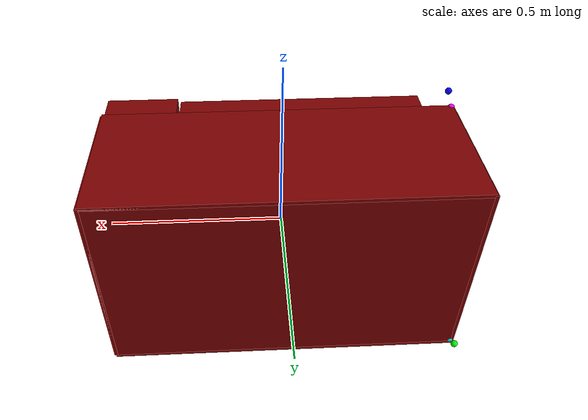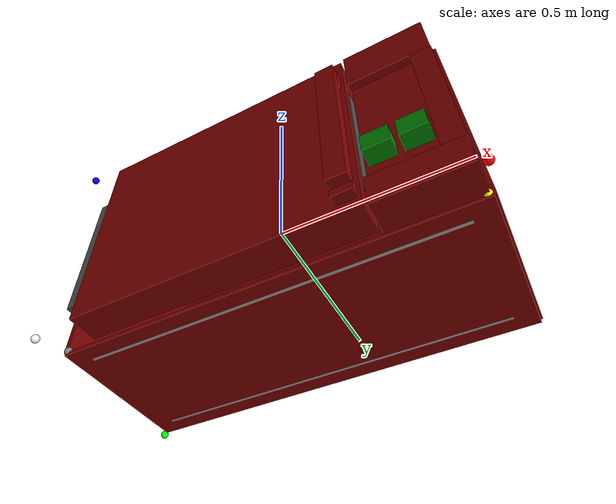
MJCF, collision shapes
<mujoco model="model">
  <compiler angle="radian"/>
  <asset>
    <texture file="visuals/material_0.png" name="tex-model" type="2d"/>
    <texture type="2d" name="image0" file="visuals/image0.png"/>
    <material name="model" reflectance="0.5" texrepeat="1 1" texture="tex-model" texuniform="false"/>
    <material name="Baked_Microwave" texture="image0" specular="0.5" shininess="0.25"/>
    <material name="Door_Inside" specular="0.5" shininess="0.25" rgba="0.3059 0.3059 0.3059 1"/>
    <mesh file="visuals/model_0.obj" name="model_0_vis" scale="1 1 1"/>
    <mesh file="visuals/door_0.obj" name="door_0_vis" scale="1 1 1"/>
  </asset>
  <default>
    <default class="visual">
      <geom conaffinity="0" contype="0" group="1" type="mesh"/>
    </default>
    <default class="collision">
      <geom group="0" rgba="0.5 0 0 0.5"/>
    </default>
  </default>
  <worldbody>
    <body>
      <body name="object">
        <geom solimp="0.998 0.998 0.001" solref="0.001 1" density="100" friction="0.95 0.3 0.1" type="mesh" mesh="model_0_vis" material="Baked_Microwave" class="visual"/>
        <!-- Back Wall -->
        <geom class="collision" type="box" pos="0 0.262 0.005" size="0.5 0.005 0.285"/>
        <!-- Floor -->
        <geom class="collision" type="box" pos="0 0.067 -0.283" size="0.5 0.2 0.005"/>
        <!-- Top -->
        <geom class="collision" type="box" pos="0 0.067 0.29" size="0.5 0.2 0.005"/>
        <!-- Left Wall-->
        <geom class="collision" type="box" pos="-0.5 0.067 0.005" size="0.005 0.2 0.285"/>
        <!-- Right Wall-->
        <geom class="collision" type="box" pos="0.5 0.067 0.005" size="0.005 0.2 0.285"/>
        <!-- Keypad -->
        <geom class="collision" type="box" pos="0.393 -0.174 0.225" size="0.101 0.041 0.065"/>
        <geom class="collision" type="box" pos="0.393 -0.174 -0.24" size="0.101 0.041 0.04"/>
        <geom class="collision" type="box" pos="0.47 -0.174 -0.02" size="0.025 0.041 0.18"/>
        <geom class="collision" type="box" pos="0.37 -0.174 -0.02" size="0.075 0.0215 0.18"/>
        <!-- start/stop buttons -->
        <body name="start_button" pos="0.41 -0.22 -0.13">
          <body name="start_button_body" pos="0 0 0">
              <joint name="start_button_joint" type="slide" pos="0 0 0" axis="0 1 0" range="0 0.02" limited="false" stiffness="2000" damping="50" springref="0.001"/>
              <geom name="start_button_geom" class="collision" type="box" pos="0 0 0" size="0.03 0.0216 0.025" rgba="0.0 0.5 0 0.5" mass="0.5"/>
          </body>
        </body>
        <body name="close_button" pos="0.335 -0.22 -0.13">
          <body name="close_button_body" pos="0 0 0">
              <joint name="close_button_joint" type="slide" pos="0 0 0" axis="0 1 0" range="0 0.02" limited="false" stiffness="2000" damping="50" springref="0.001"/>
              <geom name="close_button_geom" class="collision" type="box" pos="0 0 0" size="0.03 0.0216 0.025" rgba="0.0 0.5 0 0.5" mass="0.5"/>
          </body>
        </body>
        <geom class="collision" type="cylinder" pos="-0.09 0.07 -0.282" size="0.19 0.005" rgba="0 1 0 0.5" name="tray"/>
        <!-- Bottom gaps fixes -->
        <geom class="visual" type="box" pos="0 -0.095 -0.285" size="0.45 0.008 0.002" axisangle="1 0 0 -0.6"/>
        <geom class="visual" type="box" pos="0 0.227 -0.285" size="0.45 0.009 0.002" axisangle="1 0 0 0.6"/>
        <body name="door">
          <joint axis="0 0 1" limited="true" name="microjoint" range="-1.57 0" damping="2" frictionloss="2" armature=".01" pos="-0.471 -0.178 0"/>
          <geom solimp="0.998 0.998 0.001" solref="0.001 1" density="100" friction="0.95 0.3 0.1" type="mesh" mesh="door_0_vis" material="Baked_Microwave" class="visual"/>
          <!-- Door -->
          <geom class="collision" type="box" pos="-0.067 -0.174 0.005" size="0.351 0.041 0.275"/>
          <!-- Handle Top -->
          <geom class="collision" type="box" pos="0.254 -0.22 0.18" size="0.023 0.02 0.021"/>
          <!-- Handle Bottom -->
          <geom class="collision" type="box" pos="0.254 -0.22 -0.23" size="0.023 0.02 0.021"/>
          <!-- Handle Main -->
          <geom class="collision" type="box" pos="0.254 -0.248 -0.02" size="0.023 0.016 0.21" name="door_handle"/>
          <!-- Door inside gap fixes -->
          <geom class="visual" type="box" pos="0.2325 -0.165 -0.022" size="0.054 0.03 0.185" material="Door_Inside"/>
          <geom class="visual" type="box" pos="-0.435 -0.165 -0.022" size="0.03 0.03 0.185" material="Door_Inside"/>
          <geom class="visual" type="box" pos="-0.113 -0.165 -0.185" size="0.293 0.03 0.02" material="Door_Inside"/>
          <geom class="visual" type="box" pos="-0.113 -0.165 0.1125" size="0.293 0.03 0.047" material="Door_Inside"/>
          <!-- door sites -->
          <site rgba="1 0 0 0" size="0.005" pos="-0.075 -0.21 0.01" name="door_p1"/>
          <site rgba="0 1 0 0" size="0.005" pos="-0.025 -0.21 0.01" name="door_p2"/>
          <site rgba="0 0 1 0" size="0.005" pos="-0.075 -0.21 0.06" name="door_p3"/>
        </body>
        <!-- exterior bounding box points -->
        <site rgba="1 1 1 1" size="0.01" pos="-0.51 -0.215 -0.29" name="ext_p0"/>
        <site rgba="1 0 0 1" size="0.01" pos="0.51 -0.215 -0.29" name="ext_px"/>
        <site rgba="0 1 0 1" size="0.01" pos="-0.51 0.27 -0.29" name="ext_py"/>
        <site rgba="0 0 1 1" size="0.01" pos="-0.51 -0.215 0.293" name="ext_pz"/>
        <!-- interior bounding box points -->
        <site rgba="0.5 0.5 0.5 1" size="0.01" pos="-0.495 -0.13 -0.275" name="int_p0"/>
        <site rgba="1 1 0 1" size="0.01" pos="0.49 -0.13 -0.275" name="int_px"/>
        <site rgba="0 1 1 1" size="0.01" pos="-0.495 0.26 -0.275" name="int_py"/>
        <site rgba="1 0 1 1" size="0.01" pos="-0.495 -0.13 0.29" name="int_pz"/>
      </body>
    </body>

  </worldbody>
  <actuator>
  <position name="door_actuator" joint="microjoint" kp="80" kv="50"/>
 </actuator>
</mujoco>
